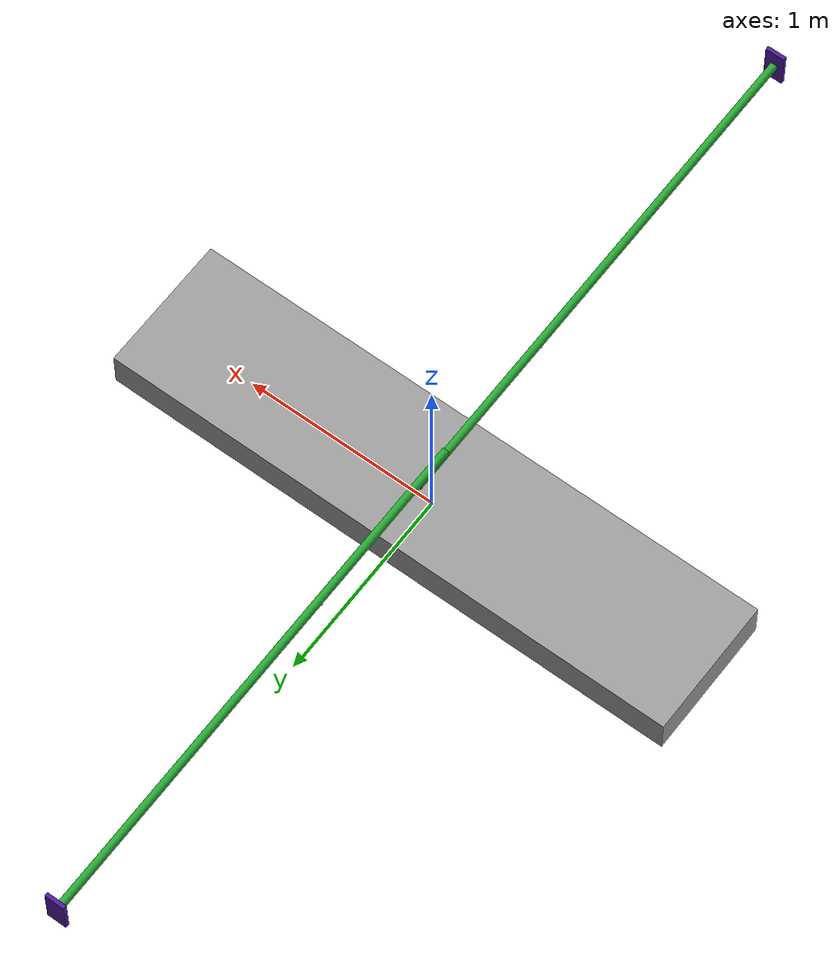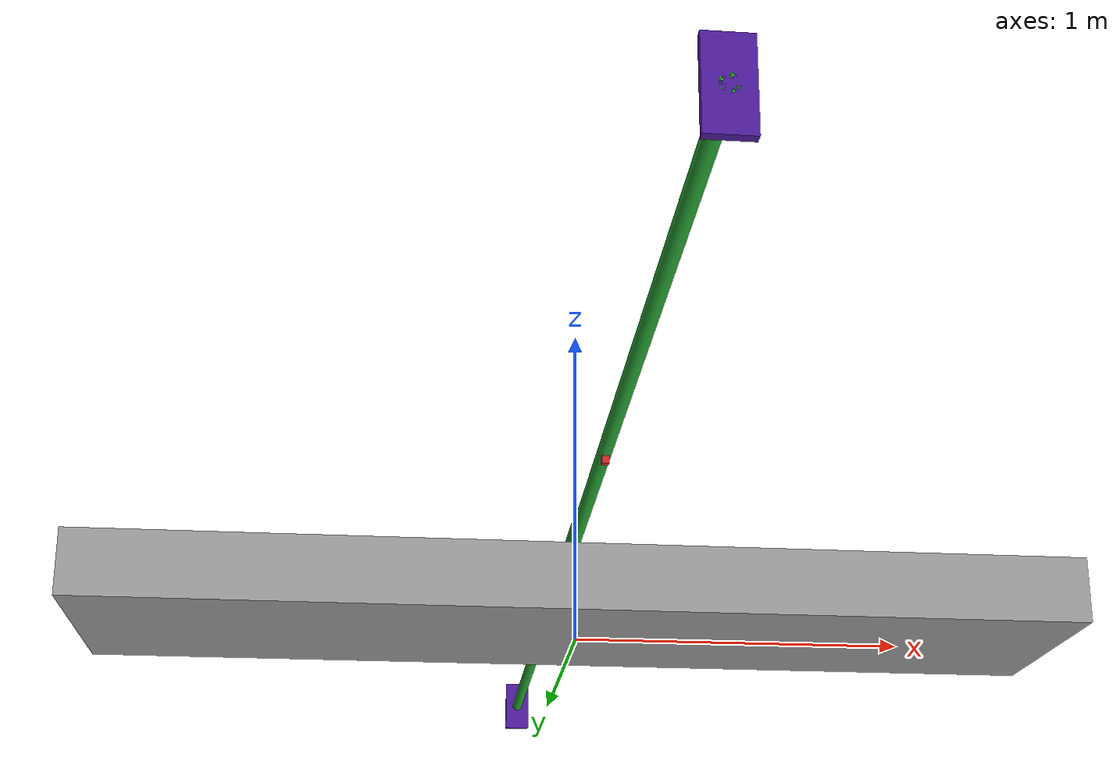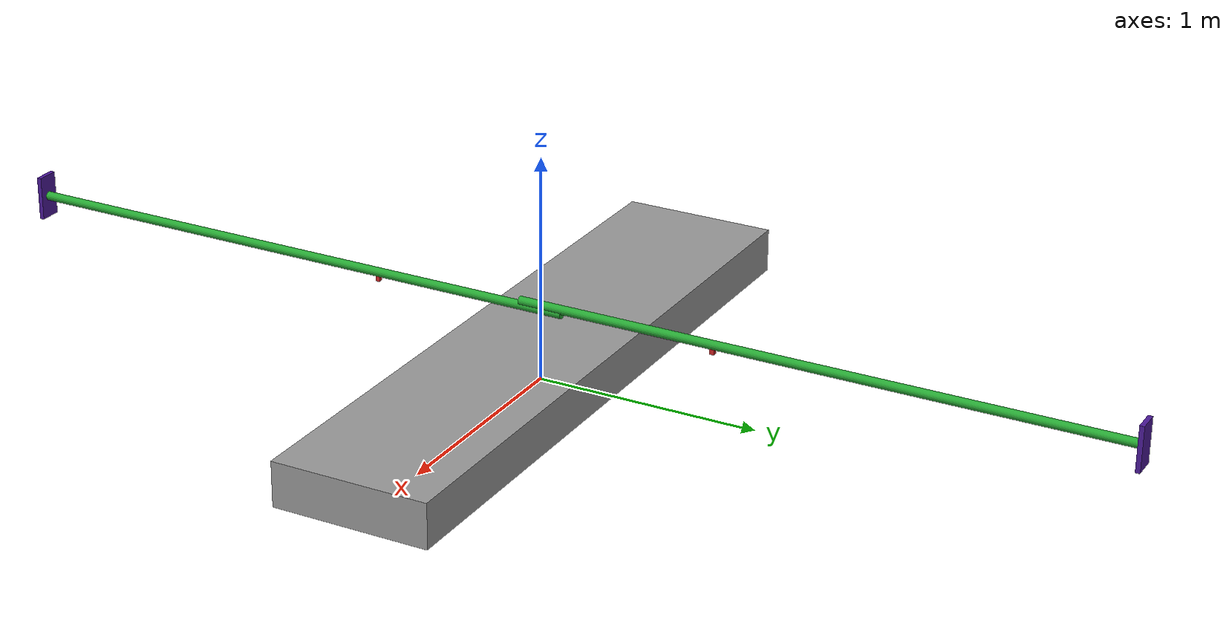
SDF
<sdf version='1.6'>
  <model name='myboat'>
    <link name='base_link'>
      <pose frame=''>0 0 0 0 -0 0</pose>
      <inertial>
        <pose frame=''>0 0 0.1 0 -0 0</pose>
        <mass>15</mass>
        <inertia>
          <ixx>0.6</ixx>
          <ixy>0</ixy>
          <ixz>0</ixz>
          <iyy>11</iyy>
          <iyz>0</iyz>
          <izz>11.8</izz>
        </inertia>
      </inertial>
      <collision name='base_link_fixed_joint_lump__skiff_collision'>
        <pose frame=''>0 0 0.1 0 -0 0</pose>
        <geometry>
          <box>
            <size>3 0.7 0.2</size>
          </box>
        </geometry>
        <surface>
          <contact>
            <ode/>
          </contact>
          <friction>
            <ode/>
          </friction>
        </surface>
      </collision>
      <visual name='base_link_fixed_joint_lump__skiff_visual'>
        <pose frame=''>0 0 0.1 0 -0 0</pose>
        <geometry>
          <box>
            <size>3 0.7 0.2</size>
          </box>
        </geometry>
        <material>
          <script>
            <name>Gazebo/Grey</name>
            <uri>file://media/materials/scripts/gazebo.material</uri>
          </script>
        </material>
      </visual>
      <gravity>1</gravity>
      <velocity_decay/>
    </link>
    <link name='port_rowlock'>
      <pose frame=''>0 -0.8 0.3 0 -0 0</pose>
      <inertial>
        <pose frame=''>0 0 0 0 -0 0</pose>
        <mass>0.1</mass>
        <inertia>
          <ixx>7e-05</ixx>
          <ixy>0</ixy>
          <ixz>0</ixz>
          <iyy>7e-05</iyy>
          <iyz>0</iyz>
          <izz>7e-06</izz>
        </inertia>
      </inertial>
      <collision name='port_rowlock_collision'>
        <pose frame=''>0 0 0 0 -0 0</pose>
        <geometry>
          <box>
            <size>0.02 0.02 0.04</size>
          </box>
        </geometry>
        <surface>
          <contact>
            <ode/>
          </contact>
          <friction>
            <ode>
              <mu>0.01</mu>
              <mu2>0.01</mu2>
            </ode>
          </friction>
        </surface>
      </collision>
      <visual name='port_rowlock_visual'>
        <pose frame=''>0 0 0 0 -0 0</pose>
        <geometry>
          <box>
            <size>0.02 0.02 0.04</size>
          </box>
        </geometry>
        <material>
          <script>
            <name>Gazebo/Red</name>
            <uri>file://media/materials/scripts/gazebo.material</uri>
          </script>
        </material>
      </visual>
      <gravity>1</gravity>
      <velocity_decay/>
    </link>
    <joint name='port_rowlock_joint' type='revolute'>
      <child>port_rowlock</child>
      <parent>base_link</parent>
      <axis>
        <xyz>0 0 1</xyz>
        <limit>
          <lower>-1.4</lower>
          <upper>1.4</upper>
          <effort>2000</effort>
          <velocity>1</velocity>
        </limit>
        <dynamics>
          <spring_reference>0</spring_reference>
          <spring_stiffness>0</spring_stiffness>
        </dynamics>
        <use_parent_model_frame>1</use_parent_model_frame>
      </axis>
    </joint>
    <link name='port_oar'>
      <pose frame=''>0 -0.8 0.32 -1.57079 1.57079 3.14159</pose>
      <inertial>
        <pose frame=''>0 0 0.45 0 -0 0</pose>
        <mass>1</mass>
        <inertia>
          <ixx>0.6</ixx>
          <ixy>0</ixy>
          <ixz>0</ixz>
          <iyy>0.6</iyy>
          <iyz>0</iyz>
          <izz>0.001</izz>
        </inertia>
      </inertial>
      <collision name='port_oar_collision'>
        <pose frame=''>0 0 0.45 0 -0 0</pose>
        <geometry>
          <cylinder>
            <length>2.7</length>
            <radius>0.02</radius>
          </cylinder>
        </geometry>
        <surface>
          <contact>
            <ode/>
          </contact>
          <friction>
            <ode>
              <mu>0.01</mu>
              <mu2>0.01</mu2>
            </ode>
          </friction>
        </surface>
      </collision>
      <visual name='port_oar_visual'>
        <pose frame=''>0 0 0.45 0 -0 0</pose>
        <geometry>
          <cylinder>
            <length>2.7</length>
            <radius>0.02</radius>
          </cylinder>
        </geometry>
        <material>
          <script>
            <name>Gazebo/Green</name>
            <uri>file://media/materials/scripts/gazebo.material</uri>
          </script>
        </material>
      </visual>
      <gravity>1</gravity>
      <velocity_decay/>
    </link>
    <joint name='port_rowlock_oar_joint' type='revolute'>
      <child>port_oar</child>
      <parent>port_rowlock</parent>
      <axis>
        <xyz>1 0 -0</xyz>
        <limit>
          <lower>0</lower>
          <upper>0.4</upper>
          <effort>1000</effort>
          <velocity>1</velocity>
        </limit>
        <dynamics>
          <spring_reference>0</spring_reference>
          <spring_stiffness>0</spring_stiffness>
        </dynamics>
        <use_parent_model_frame>1</use_parent_model_frame>
      </axis>
    </joint>
    <link name='port_blade'>
      <pose frame=''>0 -2.6 0.32 -1.57079 1.57079 3.14159</pose>
      <inertial>
        <pose frame=''>0 0 -0.01 0 -0 0</pose>
        <mass>1</mass>
        <inertia>
          <ixx>0.34</ixx>
          <ixy>0</ixy>
          <ixz>0</ixz>
          <iyy>0.34</iyy>
          <iyz>0</iyz>
          <izz>0.73</izz>
        </inertia>
      </inertial>
      <collision name='port_blade_collision'>
        <pose frame=''>0 0 -0.01 0 -0 0</pose>
        <geometry>
          <box>
            <size>0.1 0.1 0.02</size>
          </box>
        </geometry>
        <surface>
          <contact>
            <ode/>
          </contact>
          <friction>
            <ode>
              <mu>0.01</mu>
              <mu2>0.01</mu2>
            </ode>
          </friction>
        </surface>
      </collision>
      <visual name='port_blade_visual'>
        <pose frame=''>0 0 -0.01 0 -0 0</pose>
        <geometry>
          <box>
            <size>0.2 0.1 0.02</size>
          </box>
        </geometry>
        <material>
          <script>
            <name>Gazebo/Indigo</name>
            <uri>file://media/materials/scripts/gazebo.material</uri>
          </script>
        </material>
      </visual>
      <gravity>1</gravity>
      <velocity_decay/>
    </link>
    <joint name='port_blade_joint' type='revolute'>
      <child>port_blade</child>
      <parent>port_oar</parent>
      <axis>
        <xyz>1 0 -0</xyz>
        <limit>
          <lower>-2</lower>
          <upper>-1.7</upper>
          <effort>1000</effort>
          <velocity>1</velocity>
        </limit>
        <dynamics>
          <spring_reference>0</spring_reference>
          <spring_stiffness>0</spring_stiffness>
        </dynamics>
        <use_parent_model_frame>1</use_parent_model_frame>
      </axis>
    </joint>
    <link name='starboard_rowlock'>
      <pose frame=''>0 0.8 0.32 0 -0 0</pose>
      <inertial>
        <pose frame=''>0 0 0 0 -0 0</pose>
        <mass>0.1</mass>
        <inertia>
          <ixx>7e-05</ixx>
          <ixy>0</ixy>
          <ixz>0</ixz>
          <iyy>7e-05</iyy>
          <iyz>0</iyz>
          <izz>7e-06</izz>
        </inertia>
      </inertial>
      <collision name='starboard_rowlock_collision'>
        <pose frame=''>0 0 0 0 -0 0</pose>
        <geometry>
          <box>
            <size>0.02 0.02 0.04</size>
          </box>
        </geometry>
        <surface>
          <contact>
            <ode/>
          </contact>
          <friction>
            <ode>
              <mu>0.01</mu>
              <mu2>0.01</mu2>
            </ode>
          </friction>
        </surface>
      </collision>
      <visual name='starboard_rowlock_visual'>
        <pose frame=''>0 0 0 0 -0 0</pose>
        <geometry>
          <box>
            <size>0.02 0.02 0.04</size>
          </box>
        </geometry>
        <material>
          <script>
            <name>Gazebo/Red</name>
            <uri>file://media/materials/scripts/gazebo.material</uri>
          </script>
        </material>
      </visual>
      <gravity>1</gravity>
      <velocity_decay/>
    </link>
    <joint name='starboard_rowlock_joint' type='revolute'>
      <child>starboard_rowlock</child>
      <parent>base_link</parent>
      <axis>
        <xyz>0 0 1</xyz>
        <limit>
          <lower>-1.4</lower>
          <upper>1.4</upper>
          <effort>2000</effort>
          <velocity>1</velocity>
        </limit>
        <dynamics>
          <spring_reference>0</spring_reference>
          <spring_stiffness>0</spring_stiffness>
        </dynamics>
        <use_parent_model_frame>1</use_parent_model_frame>
      </axis>
    </joint>
    <link name='starboard_oar'>
      <pose frame=''>0 0.8 0.34 -1.57079 1.57079 3.14159</pose>
      <inertial>
        <pose frame=''>0 0 -0.45 0 -0 0</pose>
        <mass>1</mass>
        <inertia>
          <ixx>0.6</ixx>
          <ixy>0</ixy>
          <ixz>0</ixz>
          <iyy>0.6</iyy>
          <iyz>0</iyz>
          <izz>0.001</izz>
        </inertia>
      </inertial>
      <collision name='starboard_oar_collision'>
        <pose frame=''>0 0 -0.45 0 -0 0</pose>
        <geometry>
          <cylinder>
            <length>2.7</length>
            <radius>0.02</radius>
          </cylinder>
        </geometry>
        <surface>
          <contact>
            <ode/>
          </contact>
          <friction>
            <ode>
              <mu>0.01</mu>
              <mu2>0.01</mu2>
            </ode>
          </friction>
        </surface>
      </collision>
      <visual name='starboard_oar_visual'>
        <pose frame=''>0 0 -0.45 0 -0 0</pose>
        <geometry>
          <cylinder>
            <length>2.7</length>
            <radius>0.02</radius>
          </cylinder>
        </geometry>
        <material>
          <script>
            <name>Gazebo/Green</name>
            <uri>file://media/materials/scripts/gazebo.material</uri>
          </script>
        </material>
      </visual>
      <gravity>1</gravity>
      <velocity_decay/>
    </link>
    <joint name='starboard_rowlock_oar_joint' type='revolute'>
      <child>starboard_oar</child>
      <parent>starboard_rowlock</parent>
      <axis>
        <xyz>1 0 -0</xyz>
        <limit>
          <lower>-0.4</lower>
          <upper>0</upper>
          <effort>1000</effort>
          <velocity>1</velocity>
        </limit>
        <dynamics>
          <spring_reference>0</spring_reference>
          <spring_stiffness>0</spring_stiffness>
        </dynamics>
        <use_parent_model_frame>1</use_parent_model_frame>
      </axis>
    </joint>
    <link name='starboard_blade'>
      <pose frame=''>-0 2.6 0.34 -1.57079 1.57079 3.14159</pose>
      <inertial>
        <pose frame=''>0 0 -0.01 0 -0 0</pose>
        <mass>1</mass>
        <inertia>
          <ixx>0.34</ixx>
          <ixy>0</ixy>
          <ixz>0</ixz>
          <iyy>0.34</iyy>
          <iyz>0</iyz>
          <izz>0.73</izz>
        </inertia>
      </inertial>
      <collision name='starboard_blade_collision'>
        <pose frame=''>0 0 -0.01 0 -0 0</pose>
        <geometry>
          <box>
            <size>0.1 0.1 0.02</size>
          </box>
        </geometry>
        <surface>
          <contact>
            <ode/>
          </contact>
          <friction>
            <ode>
              <mu>0.01</mu>
              <mu2>0.01</mu2>
            </ode>
          </friction>
        </surface>
      </collision>
      <visual name='starboard_blade_visual'>
        <pose frame=''>0 0 -0.01 0 -0 0</pose>
        <geometry>
          <box>
            <size>0.2 0.1 0.02</size>
          </box>
        </geometry>
        <material>
          <script>
            <name>Gazebo/Indigo</name>
            <uri>file://media/materials/scripts/gazebo.material</uri>
          </script>
        </material>
      </visual>
      <gravity>1</gravity>
      <velocity_decay/>
    </link>
    <joint name='starboard_blade_joint' type='revolute'>
      <child>starboard_blade</child>
      <parent>starboard_oar</parent>
      <axis>
        <xyz>1 0 -0</xyz>
        <limit>
          <lower>-1.5</lower>
          <upper>-1.2</upper>
          <effort>1000</effort>
          <velocity>1</velocity>
        </limit>
        <dynamics>
          <spring_reference>0</spring_reference>
          <spring_stiffness>0</spring_stiffness>
        </dynamics>
        <use_parent_model_frame>1</use_parent_model_frame>
      </axis>
    </joint>
    <self_collide>1</self_collide>
    <static>0</static>
    <plugin name='gazebo_ros_control' filename='libgazebo_ros_control.so'>
      <robotNamespace>/boot1</robotNamespace>
      <robotSimType>gazebo_ros_control/DefaultRobotHWSim</robotSimType>
    </plugin>
  </model>
</sdf>
